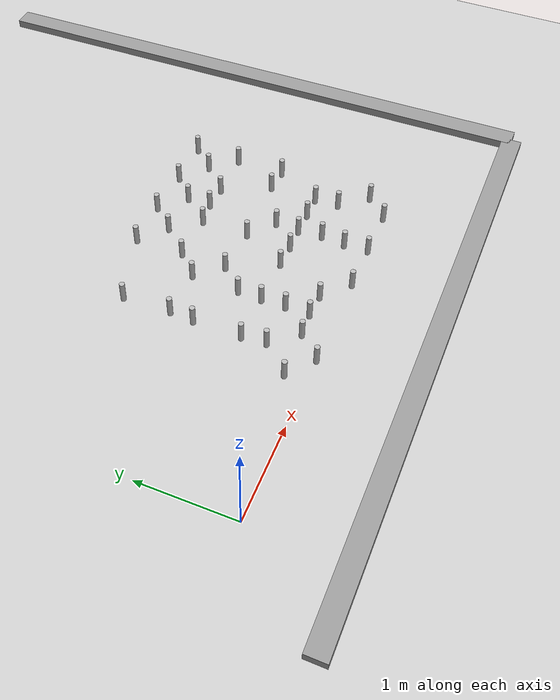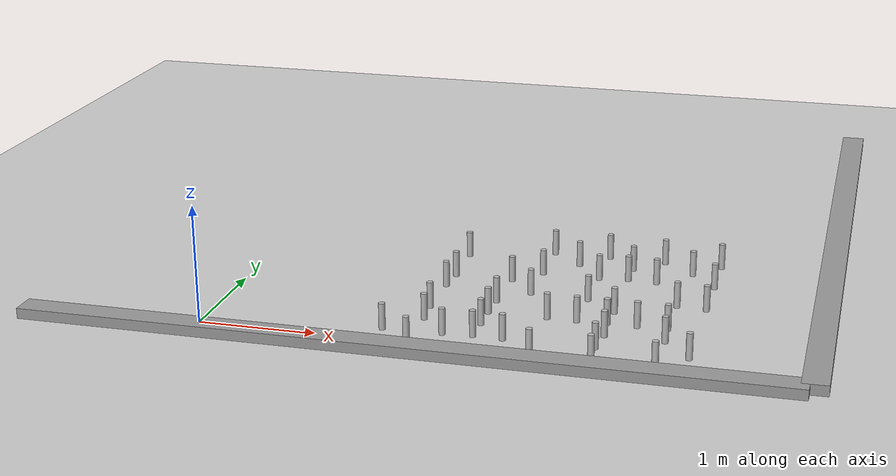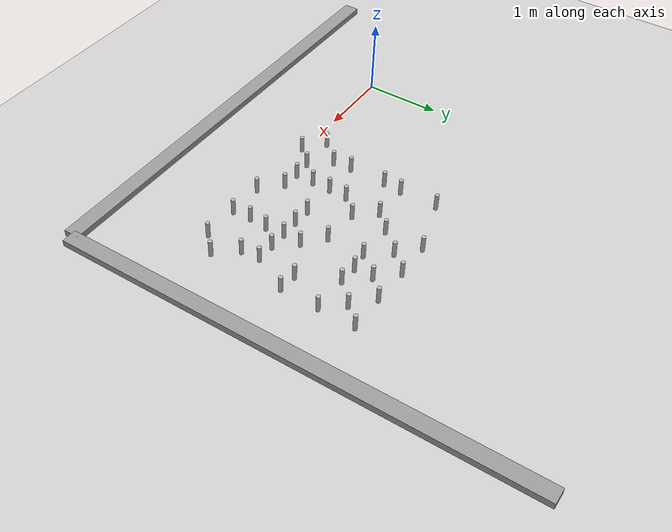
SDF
<sdf version="1.6">
 <world name="default">
  <model name="ground_plane">
   <static>1</static>
   <link name="link">
    <collision name="collision">
     <geometry><plane><normal>0 0 1</normal><size>100 100</size></plane></geometry>
     <surface><friction><ode><mu>100</mu><mu2>50</mu2></ode></friction></surface>
    </collision>
    <visual name="visual">
     <cast_shadows>0</cast_shadows>
     <geometry><plane><normal>0 0 1</normal><size>100 100</size></plane></geometry>
     <material>
      <script><uri>file://media/materials/scripts/gazebo.material</uri><name>Gazebo/Grey</name></script>
     </material>
    </visual>
   </link>
  </model>
  <model name="wall3">
   <static>1</static>
   <link name="link">
    <pose>0 0 0.42 0 -0 0</pose>
    <collision name="collision"><geometry><box><size>6 0.2 0.084</size></box></geometry></collision>
    <visual name="visual">
     <cast_shadows>0</cast_shadows>
     <geometry><box><size>6 0.2 0.084</size></box></geometry>
     <material>
      <script>
       <uri>model://grey_wall/materials/scripts</uri>
       <uri>model://grey_wall/materials/textures</uri>
       <name>vrc/grey_wall</name>
      </script>
     </material>
    </visual>
   </link>
   <pose>5.0 2.0 0 0 -0 -1.55905</pose>
  </model>
  <model name="wall4">
   <static>1</static>
   <link name="link">
    <pose>0 0 0.42 0 -0 0</pose>
    <collision name="collision"><geometry><box><size>6 0.2 0.084</size></box></geometry></collision>
    <visual name="visual">
     <cast_shadows>0</cast_shadows>
     <geometry><box><size>6 0.2 0.084</size></box></geometry>
     <material>
      <script>
       <uri>model://grey_wall/materials/scripts</uri>
       <uri>model://grey_wall/materials/textures</uri>
       <name>vrc/grey_wall</name>
      </script>
     </material>
    </visual>
   </link>
   <pose>2.0 -1 0 0 -0 0</pose>
  </model>
  <model name="can1">
   <link name="link">
    <pose>0 0 0.115 0 -0 0</pose>
    <inertial>
     <mass>0.39</mass>
     <inertia><ixx>0.00058</ixx><ixy>0</ixy><ixz>0</ixz><iyy>0.00058</iyy><iyz>0</iyz><izz>0.00019</izz></inertia>
    </inertial>
    <collision name="collision">
     <geometry><cylinder><radius>0.0275</radius><length>0.23</length></cylinder></geometry>
    </collision>
    <visual name="visual">
     <geometry><cylinder><radius>0.0275</radius><length>0.23</length></cylinder></geometry>
     <material>
      <script>
       <uri>model://beer/materials/scripts</uri>
       <uri>model://beer/materials/textures</uri>
       <name>Beer/Diffuse</name>
      </script>
     </material>
    </visual>
   </link>
   <pose>2.76914062124 2.0 -2e-06 1e-06 0 -9.5e-05</pose>
  </model>
  <model name="can5">
   <link name="link">
    <pose>0 0 0.115 0 -0 0</pose>
    <inertial>
     <mass>0.39</mass>
     <inertia><ixx>0.00058</ixx><ixy>0</ixy><ixz>0</ixz><iyy>0.00058</iyy><iyz>0</iyz><izz>0.00019</izz></inertia>
    </inertial>
    <collision name="collision">
     <geometry><cylinder><radius>0.0275</radius><length>0.23</length></cylinder></geometry>
    </collision>
    <visual name="visual">
     <geometry><cylinder><radius>0.0275</radius><length>0.23</length></cylinder></geometry>
     <material>
      <script>
       <uri>model://beer/materials/scripts</uri>
       <uri>model://beer/materials/textures</uri>
       <name>Beer/Diffuse</name>
      </script>
     </material>
    </visual>
   </link>
   <pose>2.5 2.23105684745 -2e-06 1e-06 0 -9.5e-05</pose>
  </model>
  <model name="can7">
   <link name="link">
    <pose>0 0 0.115 0 -0 0</pose>
    <inertial>
     <mass>0.39</mass>
     <inertia><ixx>0.00058</ixx><ixy>0</ixy><ixz>0</ixz><iyy>0.00058</iyy><iyz>0</iyz><izz>0.00019</izz></inertia>
    </inertial>
    <collision name="collision">
     <geometry><cylinder><radius>0.0275</radius><length>0.23</length></cylinder></geometry>
    </collision>
    <visual name="visual">
     <geometry><cylinder><radius>0.0275</radius><length>0.23</length></cylinder></geometry>
     <material>
      <script>
       <uri>model://beer/materials/scripts</uri>
       <uri>model://beer/materials/textures</uri>
       <name>Beer/Diffuse</name>
      </script>
     </material>
    </visual>
   </link>
   <pose>4.0 1.23062895829 -2e-06 1e-06 0 -9.5e-05</pose>
  </model>
  <model name="can11">
   <link name="link">
    <pose>0 0 0.115 0 -0 0</pose>
    <inertial>
     <mass>0.39</mass>
     <inertia><ixx>0.00058</ixx><ixy>0</ixy><ixz>0</ixz><iyy>0.00058</iyy><iyz>0</iyz><izz>0.00019</izz></inertia>
    </inertial>
    <collision name="collision">
     <geometry><cylinder><radius>0.0275</radius><length>0.23</length></cylinder></geometry>
    </collision>
    <visual name="visual">
     <geometry><cylinder><radius>0.0275</radius><length>0.23</length></cylinder></geometry>
     <material>
      <script>
       <uri>model://beer/materials/scripts</uri>
       <uri>model://beer/materials/textures</uri>
       <name>Beer/Diffuse</name>
      </script>
     </material>
    </visual>
   </link>
   <pose>2.7728491236 0.0 -2e-06 1e-06 0 -9.5e-05</pose>
  </model>
  <model name="can16">
   <link name="link">
    <pose>0 0 0.115 0 -0 0</pose>
    <inertial>
     <mass>0.39</mass>
     <inertia><ixx>0.00058</ixx><ixy>0</ixy><ixz>0</ixz><iyy>0.00058</iyy><iyz>0</iyz><izz>0.00019</izz></inertia>
    </inertial>
    <collision name="collision">
     <geometry><cylinder><radius>0.0275</radius><length>0.23</length></cylinder></geometry>
    </collision>
    <visual name="visual">
     <geometry><cylinder><radius>0.0275</radius><length>0.23</length></cylinder></geometry>
     <material>
      <script>
       <uri>model://beer/materials/scripts</uri>
       <uri>model://beer/materials/textures</uri>
       <name>Beer/Diffuse</name>
      </script>
     </material>
    </visual>
   </link>
   <pose>4.0 1.74220794956 -2e-06 1e-06 0 -9.5e-05</pose>
  </model>
  <model name="can20">
   <link name="link">
    <pose>0 0 0.115 0 -0 0</pose>
    <inertial>
     <mass>0.39</mass>
     <inertia><ixx>0.00058</ixx><ixy>0</ixy><ixz>0</ixz><iyy>0.00058</iyy><iyz>0</iyz><izz>0.00019</izz></inertia>
    </inertial>
    <collision name="collision">
     <geometry><cylinder><radius>0.0275</radius><length>0.23</length></cylinder></geometry>
    </collision>
    <visual name="visual">
     <geometry><cylinder><radius>0.0275</radius><length>0.23</length></cylinder></geometry>
     <material>
      <script>
       <uri>model://beer/materials/scripts</uri>
       <uri>model://beer/materials/textures</uri>
       <name>Beer/Diffuse</name>
      </script>
     </material>
    </visual>
   </link>
   <pose>3.77761734473 2.0 -2e-06 1e-06 0 -9.5e-05</pose>
  </model>
  <model name="can23">
   <link name="link">
    <pose>0 0 0.115 0 -0 0</pose>
    <inertial>
     <mass>0.39</mass>
     <inertia><ixx>0.00058</ixx><ixy>0</ixy><ixz>0</ixz><iyy>0.00058</iyy><iyz>0</iyz><izz>0.00019</izz></inertia>
    </inertial>
    <collision name="collision">
     <geometry><cylinder><radius>0.0275</radius><length>0.23</length></cylinder></geometry>
    </collision>
    <visual name="visual">
     <geometry><cylinder><radius>0.0275</radius><length>0.23</length></cylinder></geometry>
     <material>
      <script>
       <uri>model://beer/materials/scripts</uri>
       <uri>model://beer/materials/textures</uri>
       <name>Beer/Diffuse</name>
      </script>
     </material>
    </visual>
   </link>
   <pose>3.0 2.24248095322 -2e-06 1e-06 0 -9.5e-05</pose>
  </model>
  <model name="can26">
   <link name="link">
    <pose>0 0 0.115 0 -0 0</pose>
    <inertial>
     <mass>0.39</mass>
     <inertia><ixx>0.00058</ixx><ixy>0</ixy><ixz>0</ixz><iyy>0.00058</iyy><iyz>0</iyz><izz>0.00019</izz></inertia>
    </inertial>
    <collision name="collision">
     <geometry><cylinder><radius>0.0275</radius><length>0.23</length></cylinder></geometry>
    </collision>
    <visual name="visual">
     <geometry><cylinder><radius>0.0275</radius><length>0.23</length></cylinder></geometry>
     <material>
      <script>
       <uri>model://beer/materials/scripts</uri>
       <uri>model://beer/materials/textures</uri>
       <name>Beer/Diffuse</name>
      </script>
     </material>
    </visual>
   </link>
   <pose>2.25908990194 1.0 -2e-06 1e-06 0 -9.5e-05</pose>
  </model>
  <model name="can31">
   <link name="link">
    <pose>0 0 0.115 0 -0 0</pose>
    <inertial>
     <mass>0.39</mass>
     <inertia><ixx>0.00058</ixx><ixy>0</ixy><ixz>0</ixz><iyy>0.00058</iyy><iyz>0</iyz><izz>0.00019</izz></inertia>
    </inertial>
    <collision name="collision">
     <geometry><cylinder><radius>0.0275</radius><length>0.23</length></cylinder></geometry>
    </collision>
    <visual name="visual">
     <geometry><cylinder><radius>0.0275</radius><length>0.23</length></cylinder></geometry>
     <material>
      <script>
       <uri>model://beer/materials/scripts</uri>
       <uri>model://beer/materials/textures</uri>
       <name>Beer/Diffuse</name>
      </script>
     </material>
    </visual>
   </link>
   <pose>3.75 1.25 -2e-06 1e-06 0 -9.5e-05</pose>
  </model>
  <model name="can41">
   <link name="link">
    <pose>0 0 0.115 0 -0 0</pose>
    <inertial>
     <mass>0.39</mass>
     <inertia><ixx>0.00058</ixx><ixy>0</ixy><ixz>0</ixz><iyy>0.00058</iyy><iyz>0</iyz><izz>0.00019</izz></inertia>
    </inertial>
    <collision name="collision">
     <geometry><cylinder><radius>0.0275</radius><length>0.23</length></cylinder></geometry>
    </collision>
    <visual name="visual">
     <geometry><cylinder><radius>0.0275</radius><length>0.23</length></cylinder></geometry>
     <material>
      <script>
       <uri>model://beer/materials/scripts</uri>
       <uri>model://beer/materials/textures</uri>
       <name>Beer/Diffuse</name>
      </script>
     </material>
    </visual>
   </link>
   <pose>2.25 0.75 -2e-06 1e-06 0 -9.5e-05</pose>
  </model>
  <model name="can44">
   <link name="link">
    <pose>0 0 0.115 0 -0 0</pose>
    <inertial>
     <mass>0.39</mass>
     <inertia><ixx>0.00058</ixx><ixy>0</ixy><ixz>0</ixz><iyy>0.00058</iyy><iyz>0</iyz><izz>0.00019</izz></inertia>
    </inertial>
    <collision name="collision">
     <geometry><cylinder><radius>0.0275</radius><length>0.23</length></cylinder></geometry>
    </collision>
    <visual name="visual">
     <geometry><cylinder><radius>0.0275</radius><length>0.23</length></cylinder></geometry>
     <material>
      <script>
       <uri>model://beer/materials/scripts</uri>
       <uri>model://beer/materials/textures</uri>
       <name>Beer/Diffuse</name>
      </script>
     </material>
    </visual>
   </link>
   <pose>1.77244590395 0.5 -2e-06 1e-06 0 -9.5e-05</pose>
  </model>
  <model name="can47">
   <link name="link">
    <pose>0 0 0.115 0 -0 0</pose>
    <inertial>
     <mass>0.39</mass>
     <inertia><ixx>0.00058</ixx><ixy>0</ixy><ixz>0</ixz><iyy>0.00058</iyy><iyz>0</iyz><izz>0.00019</izz></inertia>
    </inertial>
    <collision name="collision">
     <geometry><cylinder><radius>0.0275</radius><length>0.23</length></cylinder></geometry>
    </collision>
    <visual name="visual">
     <geometry><cylinder><radius>0.0275</radius><length>0.23</length></cylinder></geometry>
     <material>
      <script>
       <uri>model://beer/materials/scripts</uri>
       <uri>model://beer/materials/textures</uri>
       <name>Beer/Diffuse</name>
      </script>
     </material>
    </visual>
   </link>
   <pose>3.76723646011 0.0 -2e-06 1e-06 0 -9.5e-05</pose>
  </model>
  <model name="can54">
   <link name="link">
    <pose>0 0 0.115 0 -0 0</pose>
    <inertial>
     <mass>0.39</mass>
     <inertia><ixx>0.00058</ixx><ixy>0</ixy><ixz>0</ixz><iyy>0.00058</iyy><iyz>0</iyz><izz>0.00019</izz></inertia>
    </inertial>
    <collision name="collision">
     <geometry><cylinder><radius>0.0275</radius><length>0.23</length></cylinder></geometry>
    </collision>
    <visual name="visual">
     <geometry><cylinder><radius>0.0275</radius><length>0.23</length></cylinder></geometry>
     <material>
      <script>
       <uri>model://beer/materials/scripts</uri>
       <uri>model://beer/materials/textures</uri>
       <name>Beer/Diffuse</name>
      </script>
     </material>
    </visual>
   </link>
   <pose>3.26519342554 1.0 -2e-06 1e-06 0 -9.5e-05</pose>
  </model>
  <model name="can58">
   <link name="link">
    <pose>0 0 0.115 0 -0 0</pose>
    <inertial>
     <mass>0.39</mass>
     <inertia><ixx>0.00058</ixx><ixy>0</ixy><ixz>0</ixz><iyy>0.00058</iyy><iyz>0</iyz><izz>0.00019</izz></inertia>
    </inertial>
    <collision name="collision">
     <geometry><cylinder><radius>0.0275</radius><length>0.23</length></cylinder></geometry>
    </collision>
    <visual name="visual">
     <geometry><cylinder><radius>0.0275</radius><length>0.23</length></cylinder></geometry>
     <material>
      <script>
       <uri>model://beer/materials/scripts</uri>
       <uri>model://beer/materials/textures</uri>
       <name>Beer/Diffuse</name>
      </script>
     </material>
    </visual>
   </link>
   <pose>3.25 0.25 -2e-06 1e-06 0 -9.5e-05</pose>
  </model>
  <model name="can66">
   <link name="link">
    <pose>0 0 0.115 0 -0 0</pose>
    <inertial>
     <mass>0.39</mass>
     <inertia><ixx>0.00058</ixx><ixy>0</ixy><ixz>0</ixz><iyy>0.00058</iyy><iyz>0</iyz><izz>0.00019</izz></inertia>
    </inertial>
    <collision name="collision">
     <geometry><cylinder><radius>0.0275</radius><length>0.23</length></cylinder></geometry>
    </collision>
    <visual name="visual">
     <geometry><cylinder><radius>0.0275</radius><length>0.23</length></cylinder></geometry>
     <material>
      <script>
       <uri>model://beer/materials/scripts</uri>
       <uri>model://beer/materials/textures</uri>
       <name>Beer/Diffuse</name>
      </script>
     </material>
    </visual>
   </link>
   <pose>2.25315709149 0.5 -2e-06 1e-06 0 -9.5e-05</pose>
  </model>
  <model name="can68">
   <link name="link">
    <pose>0 0 0.115 0 -0 0</pose>
    <inertial>
     <mass>0.39</mass>
     <inertia><ixx>0.00058</ixx><ixy>0</ixy><ixz>0</ixz><iyy>0.00058</iyy><iyz>0</iyz><izz>0.00019</izz></inertia>
    </inertial>
    <collision name="collision">
     <geometry><cylinder><radius>0.0275</radius><length>0.23</length></cylinder></geometry>
    </collision>
    <visual name="visual">
     <geometry><cylinder><radius>0.0275</radius><length>0.23</length></cylinder></geometry>
     <material>
      <script>
       <uri>model://beer/materials/scripts</uri>
       <uri>model://beer/materials/textures</uri>
       <name>Beer/Diffuse</name>
      </script>
     </material>
    </visual>
   </link>
   <pose>3.5 1.73550893662 -2e-06 1e-06 0 -9.5e-05</pose>
  </model>
  <model name="can69">
   <link name="link">
    <pose>0 0 0.115 0 -0 0</pose>
    <inertial>
     <mass>0.39</mass>
     <inertia><ixx>0.00058</ixx><ixy>0</ixy><ixz>0</ixz><iyy>0.00058</iyy><iyz>0</iyz><izz>0.00019</izz></inertia>
    </inertial>
    <collision name="collision">
     <geometry><cylinder><radius>0.0275</radius><length>0.23</length></cylinder></geometry>
    </collision>
    <visual name="visual">
     <geometry><cylinder><radius>0.0275</radius><length>0.23</length></cylinder></geometry>
     <material>
      <script>
       <uri>model://beer/materials/scripts</uri>
       <uri>model://beer/materials/textures</uri>
       <name>Beer/Diffuse</name>
      </script>
     </material>
    </visual>
   </link>
   <pose>4.0 0.222284673766 -2e-06 1e-06 0 -9.5e-05</pose>
  </model>
  <model name="can70">
   <link name="link">
    <pose>0 0 0.115 0 -0 0</pose>
    <inertial>
     <mass>0.39</mass>
     <inertia><ixx>0.00058</ixx><ixy>0</ixy><ixz>0</ixz><iyy>0.00058</iyy><iyz>0</iyz><izz>0.00019</izz></inertia>
    </inertial>
    <collision name="collision">
     <geometry><cylinder><radius>0.0275</radius><length>0.23</length></cylinder></geometry>
    </collision>
    <visual name="visual">
     <geometry><cylinder><radius>0.0275</radius><length>0.23</length></cylinder></geometry>
     <material>
      <script>
       <uri>model://beer/materials/scripts</uri>
       <uri>model://beer/materials/textures</uri>
       <name>Beer/Diffuse</name>
      </script>
     </material>
    </visual>
   </link>
   <pose>3.0 1.21836804703 -2e-06 1e-06 0 -9.5e-05</pose>
  </model>
  <model name="can71">
   <link name="link">
    <pose>0 0 0.115 0 -0 0</pose>
    <inertial>
     <mass>0.39</mass>
     <inertia><ixx>0.00058</ixx><ixy>0</ixy><ixz>0</ixz><iyy>0.00058</iyy><iyz>0</iyz><izz>0.00019</izz></inertia>
    </inertial>
    <collision name="collision">
     <geometry><cylinder><radius>0.0275</radius><length>0.23</length></cylinder></geometry>
    </collision>
    <visual name="visual">
     <geometry><cylinder><radius>0.0275</radius><length>0.23</length></cylinder></geometry>
     <material>
      <script>
       <uri>model://beer/materials/scripts</uri>
       <uri>model://beer/materials/textures</uri>
       <name>Beer/Diffuse</name>
      </script>
     </material>
    </visual>
   </link>
   <pose>3.25 0.75 -2e-06 1e-06 0 -9.5e-05</pose>
  </model>
  <model name="can74">
   <link name="link">
    <pose>0 0 0.115 0 -0 0</pose>
    <inertial>
     <mass>0.39</mass>
     <inertia><ixx>0.00058</ixx><ixy>0</ixy><ixz>0</ixz><iyy>0.00058</iyy><iyz>0</iyz><izz>0.00019</izz></inertia>
    </inertial>
    <collision name="collision">
     <geometry><cylinder><radius>0.0275</radius><length>0.23</length></cylinder></geometry>
    </collision>
    <visual name="visual">
     <geometry><cylinder><radius>0.0275</radius><length>0.23</length></cylinder></geometry>
     <material>
      <script>
       <uri>model://beer/materials/scripts</uri>
       <uri>model://beer/materials/textures</uri>
       <name>Beer/Diffuse</name>
      </script>
     </material>
    </visual>
   </link>
   <pose>3.5 0.748647726868 -2e-06 1e-06 0 -9.5e-05</pose>
  </model>
  <model name="can75">
   <link name="link">
    <pose>0 0 0.115 0 -0 0</pose>
    <inertial>
     <mass>0.39</mass>
     <inertia><ixx>0.00058</ixx><ixy>0</ixy><ixz>0</ixz><iyy>0.00058</iyy><iyz>0</iyz><izz>0.00019</izz></inertia>
    </inertial>
    <collision name="collision">
     <geometry><cylinder><radius>0.0275</radius><length>0.23</length></cylinder></geometry>
    </collision>
    <visual name="visual">
     <geometry><cylinder><radius>0.0275</radius><length>0.23</length></cylinder></geometry>
     <material>
      <script>
       <uri>model://beer/materials/scripts</uri>
       <uri>model://beer/materials/textures</uri>
       <name>Beer/Diffuse</name>
      </script>
     </material>
    </visual>
   </link>
   <pose>4.0 2.23157830384 -2e-06 1e-06 0 -9.5e-05</pose>
  </model>
  <model name="can77">
   <link name="link">
    <pose>0 0 0.115 0 -0 0</pose>
    <inertial>
     <mass>0.39</mass>
     <inertia><ixx>0.00058</ixx><ixy>0</ixy><ixz>0</ixz><iyy>0.00058</iyy><iyz>0</iyz><izz>0.00019</izz></inertia>
    </inertial>
    <collision name="collision">
     <geometry><cylinder><radius>0.0275</radius><length>0.23</length></cylinder></geometry>
    </collision>
    <visual name="visual">
     <geometry><cylinder><radius>0.0275</radius><length>0.23</length></cylinder></geometry>
     <material>
      <script>
       <uri>model://beer/materials/scripts</uri>
       <uri>model://beer/materials/textures</uri>
       <name>Beer/Diffuse</name>
      </script>
     </material>
    </visual>
   </link>
   <pose>3.27496102817 0.5 -2e-06 1e-06 0 -9.5e-05</pose>
  </model>
  <model name="can78">
   <link name="link">
    <pose>0 0 0.115 0 -0 0</pose>
    <inertial>
     <mass>0.39</mass>
     <inertia><ixx>0.00058</ixx><ixy>0</ixy><ixz>0</ixz><iyy>0.00058</iyy><iyz>0</iyz><izz>0.00019</izz></inertia>
    </inertial>
    <collision name="collision">
     <geometry><cylinder><radius>0.0275</radius><length>0.23</length></cylinder></geometry>
    </collision>
    <visual name="visual">
     <geometry><cylinder><radius>0.0275</radius><length>0.23</length></cylinder></geometry>
     <material>
      <script>
       <uri>model://beer/materials/scripts</uri>
       <uri>model://beer/materials/textures</uri>
       <name>Beer/Diffuse</name>
      </script>
     </material>
    </visual>
   </link>
   <pose>3.76719430119 0.5 -2e-06 1e-06 0 -9.5e-05</pose>
  </model>
  <model name="can82">
   <link name="link">
    <pose>0 0 0.115 0 -0 0</pose>
    <inertial>
     <mass>0.39</mass>
     <inertia><ixx>0.00058</ixx><ixy>0</ixy><ixz>0</ixz><iyy>0.00058</iyy><iyz>0</iyz><izz>0.00019</izz></inertia>
    </inertial>
    <collision name="collision">
     <geometry><cylinder><radius>0.0275</radius><length>0.23</length></cylinder></geometry>
    </collision>
    <visual name="visual">
     <geometry><cylinder><radius>0.0275</radius><length>0.23</length></cylinder></geometry>
     <material>
      <script>
       <uri>model://beer/materials/scripts</uri>
       <uri>model://beer/materials/textures</uri>
       <name>Beer/Diffuse</name>
      </script>
     </material>
    </visual>
   </link>
   <pose>2.5 1.71930817059 -2e-06 1e-06 0 -9.5e-05</pose>
  </model>
  <model name="can84">
   <link name="link">
    <pose>0 0 0.115 0 -0 0</pose>
    <inertial>
     <mass>0.39</mass>
     <inertia><ixx>0.00058</ixx><ixy>0</ixy><ixz>0</ixz><iyy>0.00058</iyy><iyz>0</iyz><izz>0.00019</izz></inertia>
    </inertial>
    <collision name="collision">
     <geometry><cylinder><radius>0.0275</radius><length>0.23</length></cylinder></geometry>
    </collision>
    <visual name="visual">
     <geometry><cylinder><radius>0.0275</radius><length>0.23</length></cylinder></geometry>
     <material>
      <script>
       <uri>model://beer/materials/scripts</uri>
       <uri>model://beer/materials/textures</uri>
       <name>Beer/Diffuse</name>
      </script>
     </material>
    </visual>
   </link>
   <pose>1.75 1.25 -2e-06 1e-06 0 -9.5e-05</pose>
  </model>
  <model name="can87">
   <link name="link">
    <pose>0 0 0.115 0 -0 0</pose>
    <inertial>
     <mass>0.39</mass>
     <inertia><ixx>0.00058</ixx><ixy>0</ixy><ixz>0</ixz><iyy>0.00058</iyy><iyz>0</iyz><izz>0.00019</izz></inertia>
    </inertial>
    <collision name="collision">
     <geometry><cylinder><radius>0.0275</radius><length>0.23</length></cylinder></geometry>
    </collision>
    <visual name="visual">
     <geometry><cylinder><radius>0.0275</radius><length>0.23</length></cylinder></geometry>
     <material>
      <script>
       <uri>model://beer/materials/scripts</uri>
       <uri>model://beer/materials/textures</uri>
       <name>Beer/Diffuse</name>
      </script>
     </material>
    </visual>
   </link>
   <pose>3.25 1.75 -2e-06 1e-06 0 -9.5e-05</pose>
  </model>
  <model name="can88">
   <link name="link">
    <pose>0 0 0.115 0 -0 0</pose>
    <inertial>
     <mass>0.39</mass>
     <inertia><ixx>0.00058</ixx><ixy>0</ixy><ixz>0</ixz><iyy>0.00058</iyy><iyz>0</iyz><izz>0.00019</izz></inertia>
    </inertial>
    <collision name="collision">
     <geometry><cylinder><radius>0.0275</radius><length>0.23</length></cylinder></geometry>
    </collision>
    <visual name="visual">
     <geometry><cylinder><radius>0.0275</radius><length>0.23</length></cylinder></geometry>
     <material>
      <script>
       <uri>model://beer/materials/scripts</uri>
       <uri>model://beer/materials/textures</uri>
       <name>Beer/Diffuse</name>
      </script>
     </material>
    </visual>
   </link>
   <pose>1.76965088548 0.0 -2e-06 1e-06 0 -9.5e-05</pose>
  </model>
  <model name="can90">
   <link name="link">
    <pose>0 0 0.115 0 -0 0</pose>
    <inertial>
     <mass>0.39</mass>
     <inertia><ixx>0.00058</ixx><ixy>0</ixy><ixz>0</ixz><iyy>0.00058</iyy><iyz>0</iyz><izz>0.00019</izz></inertia>
    </inertial>
    <collision name="collision">
     <geometry><cylinder><radius>0.0275</radius><length>0.23</length></cylinder></geometry>
    </collision>
    <visual name="visual">
     <geometry><cylinder><radius>0.0275</radius><length>0.23</length></cylinder></geometry>
     <material>
      <script>
       <uri>model://beer/materials/scripts</uri>
       <uri>model://beer/materials/textures</uri>
       <name>Beer/Diffuse</name>
      </script>
     </material>
    </visual>
   </link>
   <pose>1.5 0.215354829419 -2e-06 1e-06 0 -9.5e-05</pose>
  </model>
  <model name="can91">
   <link name="link">
    <pose>0 0 0.115 0 -0 0</pose>
    <inertial>
     <mass>0.39</mass>
     <inertia><ixx>0.00058</ixx><ixy>0</ixy><ixz>0</ixz><iyy>0.00058</iyy><iyz>0</iyz><izz>0.00019</izz></inertia>
    </inertial>
    <collision name="collision">
     <geometry><cylinder><radius>0.0275</radius><length>0.23</length></cylinder></geometry>
    </collision>
    <visual name="visual">
     <geometry><cylinder><radius>0.0275</radius><length>0.23</length></cylinder></geometry>
     <material>
      <script>
       <uri>model://beer/materials/scripts</uri>
       <uri>model://beer/materials/textures</uri>
       <name>Beer/Diffuse</name>
      </script>
     </material>
    </visual>
   </link>
   <pose>3.26452557949 0.0 -2e-06 1e-06 0 -9.5e-05</pose>
  </model>
  <model name="can93">
   <link name="link">
    <pose>0 0 0.115 0 -0 0</pose>
    <inertial>
     <mass>0.39</mass>
     <inertia><ixx>0.00058</ixx><ixy>0</ixy><ixz>0</ixz><iyy>0.00058</iyy><iyz>0</iyz><izz>0.00019</izz></inertia>
    </inertial>
    <collision name="collision">
     <geometry><cylinder><radius>0.0275</radius><length>0.23</length></cylinder></geometry>
    </collision>
    <visual name="visual">
     <geometry><cylinder><radius>0.0275</radius><length>0.23</length></cylinder></geometry>
     <material>
      <script>
       <uri>model://beer/materials/scripts</uri>
       <uri>model://beer/materials/textures</uri>
       <name>Beer/Diffuse</name>
      </script>
     </material>
    </visual>
   </link>
   <pose>2.27422741581 1.5 -2e-06 1e-06 0 -9.5e-05</pose>
  </model>
  <model name="can96">
   <link name="link">
    <pose>0 0 0.115 0 -0 0</pose>
    <inertial>
     <mass>0.39</mass>
     <inertia><ixx>0.00058</ixx><ixy>0</ixy><ixz>0</ixz><iyy>0.00058</iyy><iyz>0</iyz><izz>0.00019</izz></inertia>
    </inertial>
    <collision name="collision">
     <geometry><cylinder><radius>0.0275</radius><length>0.23</length></cylinder></geometry>
    </collision>
    <visual name="visual">
     <geometry><cylinder><radius>0.0275</radius><length>0.23</length></cylinder></geometry>
     <material>
      <script>
       <uri>model://beer/materials/scripts</uri>
       <uri>model://beer/materials/textures</uri>
       <name>Beer/Diffuse</name>
      </script>
     </material>
    </visual>
   </link>
   <pose>3.25094521235 2.0 -2e-06 1e-06 0 -9.5e-05</pose>
  </model>
  <model name="can98">
   <link name="link">
    <pose>0 0 0.115 0 -0 0</pose>
    <inertial>
     <mass>0.39</mass>
     <inertia><ixx>0.00058</ixx><ixy>0</ixy><ixz>0</ixz><iyy>0.00058</iyy><iyz>0</iyz><izz>0.00019</izz></inertia>
    </inertial>
    <collision name="collision">
     <geometry><cylinder><radius>0.0275</radius><length>0.23</length></cylinder></geometry>
    </collision>
    <visual name="visual">
     <geometry><cylinder><radius>0.0275</radius><length>0.23</length></cylinder></geometry>
     <material>
      <script>
       <uri>model://beer/materials/scripts</uri>
       <uri>model://beer/materials/textures</uri>
       <name>Beer/Diffuse</name>
      </script>
     </material>
    </visual>
   </link>
   <pose>3.0 1.71563993667 -2e-06 1e-06 0 -9.5e-05</pose>
  </model>
  <model name="can99">
   <link name="link">
    <pose>0 0 0.115 0 -0 0</pose>
    <inertial>
     <mass>0.39</mass>
     <inertia><ixx>0.00058</ixx><ixy>0</ixy><ixz>0</ixz><iyy>0.00058</iyy><iyz>0</iyz><izz>0.00019</izz></inertia>
    </inertial>
    <collision name="collision">
     <geometry><cylinder><radius>0.0275</radius><length>0.23</length></cylinder></geometry>
    </collision>
    <visual name="visual">
     <geometry><cylinder><radius>0.0275</radius><length>0.23</length></cylinder></geometry>
     <material>
      <script>
       <uri>model://beer/materials/scripts</uri>
       <uri>model://beer/materials/textures</uri>
       <name>Beer/Diffuse</name>
      </script>
     </material>
    </visual>
   </link>
   <pose>3.75 0.75 -2e-06 1e-06 0 -9.5e-05</pose>
  </model>
  <model name="can100">
   <link name="link">
    <pose>0 0 0.115 0 -0 0</pose>
    <inertial>
     <mass>0.39</mass>
     <inertia><ixx>0.00058</ixx><ixy>0</ixy><ixz>0</ixz><iyy>0.00058</iyy><iyz>0</iyz><izz>0.00019</izz></inertia>
    </inertial>
    <collision name="collision">
     <geometry><cylinder><radius>0.0275</radius><length>0.23</length></cylinder></geometry>
    </collision>
    <visual name="visual">
     <geometry><cylinder><radius>0.0275</radius><length>0.23</length></cylinder></geometry>
     <material>
      <script>
       <uri>model://beer/materials/scripts</uri>
       <uri>model://beer/materials/textures</uri>
       <name>Beer/Diffuse</name>
      </script>
     </material>
    </visual>
   </link>
   <pose>1.75 0.75 -2e-06 1e-06 0 -9.5e-05</pose>
  </model>
  <model name="can103">
   <link name="link">
    <pose>0 0 0.115 0 -0 0</pose>
    <inertial>
     <mass>0.39</mass>
     <inertia><ixx>0.00058</ixx><ixy>0</ixy><ixz>0</ixz><iyy>0.00058</iyy><iyz>0</iyz><izz>0.00019</izz></inertia>
    </inertial>
    <collision name="collision">
     <geometry><cylinder><radius>0.0275</radius><length>0.23</length></cylinder></geometry>
    </collision>
    <visual name="visual">
     <geometry><cylinder><radius>0.0275</radius><length>0.23</length></cylinder></geometry>
     <material>
      <script>
       <uri>model://beer/materials/scripts</uri>
       <uri>model://beer/materials/textures</uri>
       <name>Beer/Diffuse</name>
      </script>
     </material>
    </visual>
   </link>
   <pose>2.25 0.25 -2e-06 1e-06 0 -9.5e-05</pose>
  </model>
  <model name="can105">
   <link name="link">
    <pose>0 0 0.115 0 -0 0</pose>
    <inertial>
     <mass>0.39</mass>
     <inertia><ixx>0.00058</ixx><ixy>0</ixy><ixz>0</ixz><iyy>0.00058</iyy><iyz>0</iyz><izz>0.00019</izz></inertia>
    </inertial>
    <collision name="collision">
     <geometry><cylinder><radius>0.0275</radius><length>0.23</length></cylinder></geometry>
    </collision>
    <visual name="visual">
     <geometry><cylinder><radius>0.0275</radius><length>0.23</length></cylinder></geometry>
     <material>
      <script>
       <uri>model://beer/materials/scripts</uri>
       <uri>model://beer/materials/textures</uri>
       <name>Beer/Diffuse</name>
      </script>
     </material>
    </visual>
   </link>
   <pose>3.0 0.743980110255 -2e-06 1e-06 0 -9.5e-05</pose>
  </model>
  <model name="can110">
   <link name="link">
    <pose>0 0 0.115 0 -0 0</pose>
    <inertial>
     <mass>0.39</mass>
     <inertia><ixx>0.00058</ixx><ixy>0</ixy><ixz>0</ixz><iyy>0.00058</iyy><iyz>0</iyz><izz>0.00019</izz></inertia>
    </inertial>
    <collision name="collision">
     <geometry><cylinder><radius>0.0275</radius><length>0.23</length></cylinder></geometry>
    </collision>
    <visual name="visual">
     <geometry><cylinder><radius>0.0275</radius><length>0.23</length></cylinder></geometry>
     <material>
      <script>
       <uri>model://beer/materials/scripts</uri>
       <uri>model://beer/materials/textures</uri>
       <name>Beer/Diffuse</name>
      </script>
     </material>
    </visual>
   </link>
   <pose>1.76909169253 1.5 -2e-06 1e-06 0 -9.5e-05</pose>
  </model>
  <model name="can111">
   <link name="link">
    <pose>0 0 0.115 0 -0 0</pose>
    <inertial>
     <mass>0.39</mass>
     <inertia><ixx>0.00058</ixx><ixy>0</ixy><ixz>0</ixz><iyy>0.00058</iyy><iyz>0</iyz><izz>0.00019</izz></inertia>
    </inertial>
    <collision name="collision">
     <geometry><cylinder><radius>0.0275</radius><length>0.23</length></cylinder></geometry>
    </collision>
    <visual name="visual">
     <geometry><cylinder><radius>0.0275</radius><length>0.23</length></cylinder></geometry>
     <material>
      <script>
       <uri>model://beer/materials/scripts</uri>
       <uri>model://beer/materials/textures</uri>
       <name>Beer/Diffuse</name>
      </script>
     </material>
    </visual>
   </link>
   <pose>2.5 1.24161696441 -2e-06 1e-06 0 -9.5e-05</pose>
  </model>
  <model name="can118">
   <link name="link">
    <pose>0 0 0.115 0 -0 0</pose>
    <inertial>
     <mass>0.39</mass>
     <inertia><ixx>0.00058</ixx><ixy>0</ixy><ixz>0</ixz><iyy>0.00058</iyy><iyz>0</iyz><izz>0.00019</izz></inertia>
    </inertial>
    <collision name="collision">
     <geometry><cylinder><radius>0.0275</radius><length>0.23</length></cylinder></geometry>
    </collision>
    <visual name="visual">
     <geometry><cylinder><radius>0.0275</radius><length>0.23</length></cylinder></geometry>
     <material>
      <script>
       <uri>model://beer/materials/scripts</uri>
       <uri>model://beer/materials/textures</uri>
       <name>Beer/Diffuse</name>
      </script>
     </material>
    </visual>
   </link>
   <pose>2.5 0.238396775686 -2e-06 1e-06 0 -9.5e-05</pose>
  </model>
  <model name="can119">
   <link name="link">
    <pose>0 0 0.115 0 -0 0</pose>
    <inertial>
     <mass>0.39</mass>
     <inertia><ixx>0.00058</ixx><ixy>0</ixy><ixz>0</ixz><iyy>0.00058</iyy><iyz>0</iyz><izz>0.00019</izz></inertia>
    </inertial>
    <collision name="collision">
     <geometry><cylinder><radius>0.0275</radius><length>0.23</length></cylinder></geometry>
    </collision>
    <visual name="visual">
     <geometry><cylinder><radius>0.0275</radius><length>0.23</length></cylinder></geometry>
     <material>
      <script>
       <uri>model://beer/materials/scripts</uri>
       <uri>model://beer/materials/textures</uri>
       <name>Beer/Diffuse</name>
      </script>
     </material>
    </visual>
   </link>
   <pose>1.75884416847 2.0 -2e-06 1e-06 0 -9.5e-05</pose>
  </model>
  <model name="can121">
   <link name="link">
    <pose>0 0 0.115 0 -0 0</pose>
    <inertial>
     <mass>0.39</mass>
     <inertia><ixx>0.00058</ixx><ixy>0</ixy><ixz>0</ixz><iyy>0.00058</iyy><iyz>0</iyz><izz>0.00019</izz></inertia>
    </inertial>
    <collision name="collision">
     <geometry><cylinder><radius>0.0275</radius><length>0.23</length></cylinder></geometry>
    </collision>
    <visual name="visual">
     <geometry><cylinder><radius>0.0275</radius><length>0.23</length></cylinder></geometry>
     <material>
      <script>
       <uri>model://beer/materials/scripts</uri>
       <uri>model://beer/materials/textures</uri>
       <name>Beer/Diffuse</name>
      </script>
     </material>
    </visual>
   </link>
   <pose>3.5 2.22766795328 -2e-06 1e-06 0 -9.5e-05</pose>
  </model>
  <model name="can122">
   <link name="link">
    <pose>0 0 0.115 0 -0 0</pose>
    <inertial>
     <mass>0.39</mass>
     <inertia><ixx>0.00058</ixx><ixy>0</ixy><ixz>0</ixz><iyy>0.00058</iyy><iyz>0</iyz><izz>0.00019</izz></inertia>
    </inertial>
    <collision name="collision">
     <geometry><cylinder><radius>0.0275</radius><length>0.23</length></cylinder></geometry>
    </collision>
    <visual name="visual">
     <geometry><cylinder><radius>0.0275</radius><length>0.23</length></cylinder></geometry>
     <material>
      <script>
       <uri>model://beer/materials/scripts</uri>
       <uri>model://beer/materials/textures</uri>
       <name>Beer/Diffuse</name>
      </script>
     </material>
    </visual>
   </link>
   <pose>2.75 0.75 -2e-06 1e-06 0 -9.5e-05</pose>
  </model>
  <model name="can123">
   <link name="link">
    <pose>0 0 0.115 0 -0 0</pose>
    <inertial>
     <mass>0.39</mass>
     <inertia><ixx>0.00058</ixx><ixy>0</ixy><ixz>0</ixz><iyy>0.00058</iyy><iyz>0</iyz><izz>0.00019</izz></inertia>
    </inertial>
    <collision name="collision">
     <geometry><cylinder><radius>0.0275</radius><length>0.23</length></cylinder></geometry>
    </collision>
    <visual name="visual">
     <geometry><cylinder><radius>0.0275</radius><length>0.23</length></cylinder></geometry>
     <material>
      <script>
       <uri>model://beer/materials/scripts</uri>
       <uri>model://beer/materials/textures</uri>
       <name>Beer/Diffuse</name>
      </script>
     </material>
    </visual>
   </link>
   <pose>2.0 0.232468930946 -2e-06 1e-06 0 -9.5e-05</pose>
  </model>
 </world>
</sdf>
